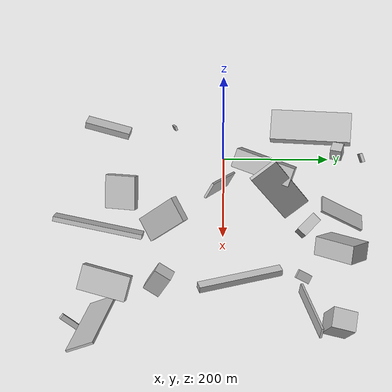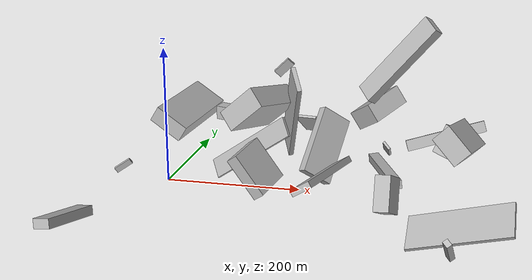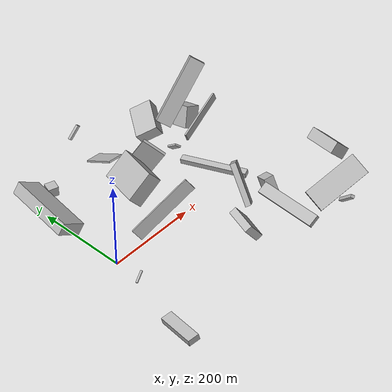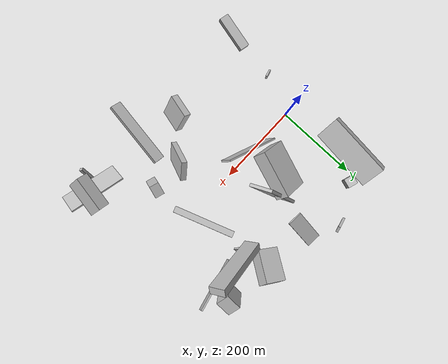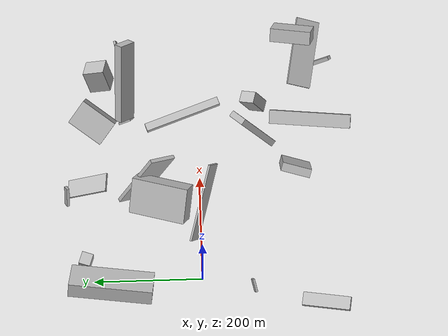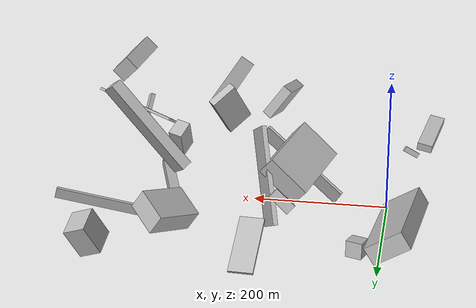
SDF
<sdf version="1.6">
 <world name="default">
  <scene>
   <sky><clouds><speed>12</speed></clouds></sky>
   <ambient>0.4 0.4 0.4 1</ambient>
   <background>0.7 0.7 0.7 1</background>
   <shadows>1</shadows>
  </scene>
  <gravity>0 0 -9.8066</gravity>
  <magnetic_field>6e-06 2.3e-05 -4.2e-05</magnetic_field>
  <physics default="0" name="default_physics" type="ode">
   <ode>
    <solver>
     <type>quick</type>
     <iters>10</iters>
     <sor>1.0</sor>
     <use_dynamic_moi_rescaling>0</use_dynamic_moi_rescaling>
    </solver>
    <constraints>
     <cfm>0</cfm>
     <erp>0.2</erp>
     <contact_max_correcting_vel>100</contact_max_correcting_vel>
     <contact_surface_layer>0.001</contact_surface_layer>
    </constraints>
   </ode>
   <max_step_size>0.004</max_step_size>
   <real_time_factor>1</real_time_factor>
   <real_time_update_rate>250</real_time_update_rate>
  </physics>
  <light name="sun" type="directional">
   <pose>0 0 10 0 0 0</pose>
   <diffuse>0.8 0.8 0.8 1</diffuse>
   <specular>0.2 0.2 0.2 1</specular>
   <attenuation>
    <range>1000</range>
    <constant>0.9</constant>
    <linear>0.01</linear>
    <quadratic>0.001</quadratic>
   </attenuation>
   <direction>-0.5 0.1 -0.9</direction>
  </light>
  <model name="building_1">
   <static>0</static>
   <pose>113.70590050160553 77.31515225843185 112.85466789901143 2.4178697901784503 0.16276785770649738 1.2487282448213217</pose>
   <link name="link">
    <gravity>0</gravity>
    <pose>0 0 16.5 0 0 0</pose>
    <collision name="collision"><geometry><box><size>105 66 33</size></box></geometry></collision>
    <visual name="visual">
     <cast_shadows>0</cast_shadows>
     <geometry><box><size>105 66 33</size></box></geometry>
     <material>
      <script>
       <uri>model://HANNAS_wall/materials/scripts</uri>
       <uri>model://HANNAS_wall/materials/textures</uri>
       <name>vrc/HANNAS_wall</name>
      </script>
     </material>
    </visual>
   </link>
  </model>
  <model name="building_2">
   <static>0</static>
   <pose>176.30418320971216 208.48847340612042 36.088987797816635 0.539823408458716 -0.015714662799701094 3.068518006890358</pose>
   <link name="link">
    <gravity>0</gravity>
    <pose>0 0 2.0 0 0 0</pose>
    <collision name="collision"><geometry><box><size>35 86 4</size></box></geometry></collision>
    <visual name="visual">
     <cast_shadows>0</cast_shadows>
     <geometry><box><size>35 86 4</size></box></geometry>
     <material>
      <script>
       <uri>model://HANNAS_wall/materials/scripts</uri>
       <uri>model://HANNAS_wall/materials/textures</uri>
       <name>vrc/HANNAS_wall</name>
      </script>
     </material>
    </visual>
   </link>
  </model>
  <model name="building_3">
   <static>0</static>
   <pose>278.12198342395806 135.5809350552114 111.88746869732276 0.5729560060322242 0.4351734814810778 0.9178163777750911</pose>
   <link name="link">
    <gravity>0</gravity>
    <pose>0 0 75.0 0 0 0</pose>
    <collision name="collision"><geometry><box><size>16 33 150</size></box></geometry></collision>
    <visual name="visual">
     <cast_shadows>0</cast_shadows>
     <geometry><box><size>16 33 150</size></box></geometry>
     <material>
      <script>
       <uri>model://HANNAS_wall/materials/scripts</uri>
       <uri>model://HANNAS_wall/materials/textures</uri>
       <name>vrc/HANNAS_wall</name>
      </script>
     </material>
    </visual>
   </link>
  </model>
  <model name="building_4">
   <static>0</static>
   <pose>249.81489508449962 -95.9874465374998 102.04854468866762 1.1442346632950966 0.5922396003157426 0.6142913740562294</pose>
   <link name="link">
    <gravity>0</gravity>
    <pose>0 0 6.0 0 0 0</pose>
    <collision name="collision"><geometry><box><size>43 90 12</size></box></geometry></collision>
    <visual name="visual">
     <cast_shadows>0</cast_shadows>
     <geometry><box><size>43 90 12</size></box></geometry>
     <material>
      <script>
       <uri>model://HANNAS_wall/materials/scripts</uri>
       <uri>model://HANNAS_wall/materials/textures</uri>
       <name>vrc/HANNAS_wall</name>
      </script>
     </material>
    </visual>
   </link>
  </model>
  <model name="building_5">
   <static>0</static>
   <pose>416.15612120923254 195.3800004437765 47.8241876266087 -2.8237240879314527 -0.3664042640521607 2.966349464511089</pose>
   <link name="link">
    <gravity>0</gravity>
    <pose>0 0 24.0 0 0 0</pose>
    <collision name="collision"><geometry><box><size>34 41 48</size></box></geometry></collision>
    <visual name="visual">
     <cast_shadows>0</cast_shadows>
     <geometry><box><size>34 41 48</size></box></geometry>
     <material>
      <script>
       <uri>model://HANNAS_wall/materials/scripts</uri>
       <uri>model://HANNAS_wall/materials/textures</uri>
       <name>vrc/HANNAS_wall</name>
      </script>
     </material>
    </visual>
   </link>
  </model>
  <model name="building_6">
   <static>0</static>
   <pose>309.59039106523915 224.96287619184528 85.67589275049984 1.8916999656250306 -0.49934786136901266 -0.7583928870047885</pose>
   <link name="link">
    <gravity>0</gravity>
    <pose>0 0 36.0 0 0 0</pose>
    <collision name="collision"><geometry><box><size>49 31 72</size></box></geometry></collision>
    <visual name="visual">
     <cast_shadows>0</cast_shadows>
     <geometry><box><size>49 31 72</size></box></geometry>
     <material>
      <script>
       <uri>model://HANNAS_wall/materials/scripts</uri>
       <uri>model://HANNAS_wall/materials/textures</uri>
       <name>vrc/HANNAS_wall</name>
      </script>
     </material>
    </visual>
   </link>
  </model>
  <model name="building_7">
   <static>0</static>
   <pose>310.31938958761464 135.28110596135417 25.968349032275377 0.8566599037642422 0.6573983559994617 1.5890601988410178</pose>
   <link name="link">
    <gravity>0</gravity>
    <pose>0 0 2.0 0 0 0</pose>
    <collision name="collision"><geometry><box><size>28 15 4</size></box></geometry></collision>
    <visual name="visual">
     <cast_shadows>0</cast_shadows>
     <geometry><box><size>28 15 4</size></box></geometry>
     <material>
      <script>
       <uri>model://HANNAS_wall/materials/scripts</uri>
       <uri>model://HANNAS_wall/materials/textures</uri>
       <name>vrc/HANNAS_wall</name>
      </script>
     </material>
    </visual>
   </link>
  </model>
  <model name="building_8">
   <static>0</static>
   <pose>341.03968001816077 -92.5894103734461 38.638655708698096 0.3523142602903828 1.1029906919324068 -1.5373922242885714</pose>
   <link name="link">
    <gravity>0</gravity>
    <pose>0 0 15.0 0 0 0</pose>
    <collision name="collision"><geometry><box><size>48 22 30</size></box></geometry></collision>
    <visual name="visual">
     <cast_shadows>0</cast_shadows>
     <geometry><box><size>48 22 30</size></box></geometry>
     <material>
      <script>
       <uri>model://HANNAS_wall/materials/scripts</uri>
       <uri>model://HANNAS_wall/materials/textures</uri>
       <name>vrc/HANNAS_wall</name>
      </script>
     </material>
    </visual>
   </link>
  </model>
  <model name="building_9">
   <static>0</static>
   <pose>-48.86035867354166 -180.7855640513294 19.790905700217454 -0.7191938143120404 -1.349444175106158 2.1042549630803187</pose>
   <link name="link">
    <gravity>0</gravity>
    <pose>0 0 43.5 0 0 0</pose>
    <collision name="collision"><geometry><box><size>13 24 87</size></box></geometry></collision>
    <visual name="visual">
     <cast_shadows>0</cast_shadows>
     <geometry><box><size>13 24 87</size></box></geometry>
     <material>
      <script>
       <uri>model://HANNAS_wall/materials/scripts</uri>
       <uri>model://HANNAS_wall/materials/textures</uri>
       <name>vrc/HANNAS_wall</name>
      </script>
     </material>
    </visual>
   </link>
  </model>
  <model name="building_10">
   <static>0</static>
   <pose>438.0410613467016 -183.6709019411958 133.22290413148107 0.20810670603024334 0.7820826267961362 3.0726432194988567</pose>
   <link name="link">
    <gravity>0</gravity>
    <pose>0 0 19.5 0 0 0</pose>
    <collision name="collision"><geometry><box><size>25 75 39</size></box></geometry></collision>
    <visual name="visual">
     <cast_shadows>0</cast_shadows>
     <geometry><box><size>25 75 39</size></box></geometry>
     <material>
      <script>
       <uri>model://HANNAS_wall/materials/scripts</uri>
       <uri>model://HANNAS_wall/materials/textures</uri>
       <name>vrc/HANNAS_wall</name>
      </script>
     </material>
    </visual>
   </link>
  </model>
  <model name="building_11">
   <static>0</static>
   <pose>123.34684441020948 241.70374282904035 124.80940794716969 1.9274603536500434 0.7339281866225056 0.46891518001641547</pose>
   <link name="link">
    <gravity>0</gravity>
    <pose>0 0 2.5 0 0 0</pose>
    <collision name="collision"><geometry><box><size>15 33 5</size></box></geometry></collision>
    <visual name="visual">
     <cast_shadows>0</cast_shadows>
     <geometry><box><size>15 33 5</size></box></geometry>
     <material>
      <script>
       <uri>model://HANNAS_wall/materials/scripts</uri>
       <uri>model://HANNAS_wall/materials/textures</uri>
       <name>vrc/HANNAS_wall</name>
      </script>
     </material>
    </visual>
   </link>
  </model>
  <model name="building_12">
   <static>0</static>
   <pose>-30.604830577280538 166.19248679044 50.003296011991296 -0.5750677298015198 0.05108668206748364 -1.6869082628381065</pose>
   <link name="link">
    <gravity>0</gravity>
    <pose>0 0 13.5 0 0 0</pose>
    <collision name="collision"><geometry><box><size>150 57 27</size></box></geometry></collision>
    <visual name="visual">
     <cast_shadows>0</cast_shadows>
     <geometry><box><size>150 57 27</size></box></geometry>
     <material>
      <script>
       <uri>model://HANNAS_wall/materials/scripts</uri>
       <uri>model://HANNAS_wall/materials/textures</uri>
       <name>vrc/HANNAS_wall</name>
      </script>
     </material>
    </visual>
   </link>
  </model>
  <model name="building_13">
   <static>0</static>
   <pose>177.01585025822183 77.89653429998174 74.73566183335419 0.03289693040260154 -1.0523889004903222 -1.1803915478923899</pose>
   <link name="link">
    <gravity>0</gravity>
    <pose>0 0 26.0 0 0 0</pose>
    <collision name="collision"><geometry><box><size>140 7 52</size></box></geometry></collision>
    <visual name="visual">
     <cast_shadows>0</cast_shadows>
     <geometry><box><size>140 7 52</size></box></geometry>
     <material>
      <script>
       <uri>model://HANNAS_wall/materials/scripts</uri>
       <uri>model://HANNAS_wall/materials/textures</uri>
       <name>vrc/HANNAS_wall</name>
      </script>
     </material>
    </visual>
   </link>
  </model>
  <model name="building_14">
   <static>0</static>
   <pose>326.5398870822768 31.999186018460545 30.346171974861477 2.585795382041411 1.4379336495062571 -0.22133078701658387</pose>
   <link name="link">
    <gravity>0</gravity>
    <pose>0 0 7.5 0 0 0</pose>
    <collision name="collision"><geometry><box><size>12 147 15</size></box></geometry></collision>
    <visual name="visual">
     <cast_shadows>0</cast_shadows>
     <geometry><box><size>12 147 15</size></box></geometry>
     <material>
      <script>
       <uri>model://HANNAS_wall/materials/scripts</uri>
       <uri>model://HANNAS_wall/materials/textures</uri>
       <name>vrc/HANNAS_wall</name>
      </script>
     </material>
    </visual>
   </link>
  </model>
  <model name="building_15">
   <static>0</static>
   <pose>423.92201921091487 -242.92270621107764 35.725573014826004 -0.9557017096385843 -0.5172737539631475 0.47545802079352006</pose>
   <link name="link">
    <gravity>0</gravity>
    <pose>0 0 4.5 0 0 0</pose>
    <collision name="collision"><geometry><box><size>7 43 9</size></box></geometry></collision>
    <visual name="visual">
     <cast_shadows>0</cast_shadows>
     <geometry><box><size>7 43 9</size></box></geometry>
     <material>
      <script>
       <uri>model://HANNAS_wall/materials/scripts</uri>
       <uri>model://HANNAS_wall/materials/textures</uri>
       <name>vrc/HANNAS_wall</name>
      </script>
     </material>
    </visual>
   </link>
  </model>
  <model name="building_16">
   <static>0</static>
   <pose>281.9790508016844 -132.4552719425708 94.14290196509538 -1.4260496246957486 0.5620662257483765 3.0635457693788</pose>
   <link name="link">
    <gravity>0</gravity>
    <pose>0 0 75.0 0 0 0</pose>
    <collision name="collision"><geometry><box><size>25 8 150</size></box></geometry></collision>
    <visual name="visual">
     <cast_shadows>0</cast_shadows>
     <geometry><box><size>25 8 150</size></box></geometry>
     <material>
      <script>
       <uri>model://HANNAS_wall/materials/scripts</uri>
       <uri>model://HANNAS_wall/materials/textures</uri>
       <name>vrc/HANNAS_wall</name>
      </script>
     </material>
    </visual>
   </link>
  </model>
  <model name="building_17">
   <static>0</static>
   <pose>187.31306854831143 -177.32662691785654 98.09510759487507 2.8789669894673984 -0.9455755710452635 3.1110918566955856</pose>
   <link name="link">
    <gravity>0</gravity>
    <pose>0 0 8.0 0 0 0</pose>
    <collision name="collision"><geometry><box><size>58 54 16</size></box></geometry></collision>
    <visual name="visual">
     <cast_shadows>0</cast_shadows>
     <geometry><box><size>58 54 16</size></box></geometry>
     <material>
      <script>
       <uri>model://HANNAS_wall/materials/scripts</uri>
       <uri>model://HANNAS_wall/materials/textures</uri>
       <name>vrc/HANNAS_wall</name>
      </script>
     </material>
    </visual>
   </link>
  </model>
  <model name="building_18">
   <static>0</static>
   <pose>38.15624583628001 207.7302008179047 48.2950196321496 1.4181799955194825 -1.5030040885986546 -1.7306508454240583</pose>
   <link name="link">
    <gravity>0</gravity>
    <pose>0 0 11.5 0 0 0</pose>
    <collision name="collision"><geometry><box><size>23 21 23</size></box></geometry></collision>
    <visual name="visual">
     <cast_shadows>0</cast_shadows>
     <geometry><box><size>23 21 23</size></box></geometry>
     <material>
      <script>
       <uri>model://HANNAS_wall/materials/scripts</uri>
       <uri>model://HANNAS_wall/materials/textures</uri>
       <name>vrc/HANNAS_wall</name>
      </script>
     </material>
    </visual>
   </link>
  </model>
  <model name="building_19">
   <static>0</static>
   <pose>400.8158438993828 143.58298997788384 51.67642423391135 1.3622506650039754 -0.26752189000139115 0.2080704350856399</pose>
   <link name="link">
    <gravity>0</gravity>
    <pose>0 0 2.0 0 0 0</pose>
    <collision name="collision"><geometry><box><size>123 17 4</size></box></geometry></collision>
    <visual name="visual">
     <cast_shadows>0</cast_shadows>
     <geometry><box><size>123 17 4</size></box></geometry>
     <material>
      <script>
       <uri>model://HANNAS_wall/materials/scripts</uri>
       <uri>model://HANNAS_wall/materials/textures</uri>
       <name>vrc/HANNAS_wall</name>
      </script>
     </material>
    </visual>
   </link>
  </model>
  <model name="building_20">
   <static>0</static>
   <pose>430.6031784322661 -206.72615824791802 54.44824102032919 2.797269830783213 -0.5006061800328208 1.5527125340008028</pose>
   <link name="link">
    <gravity>0</gravity>
    <pose>0 0 2.0 0 0 0</pose>
    <collision name="collision"><geometry><box><size>50 129 4</size></box></geometry></collision>
    <visual name="visual">
     <cast_shadows>0</cast_shadows>
     <geometry><box><size>50 129 4</size></box></geometry>
     <material>
      <script>
       <uri>model://HANNAS_wall/materials/scripts</uri>
       <uri>model://HANNAS_wall/materials/textures</uri>
       <name>vrc/HANNAS_wall</name>
      </script>
     </material>
    </visual>
   </link>
  </model>
  <model name="building_21">
   <static>0</static>
   <pose>129.49390856333562 -3.8135089001571743 59.79890116243522 1.120314712821621 0.8804191873452734 -0.8795753642597476</pose>
   <link name="link">
    <gravity>0</gravity>
    <pose>0 0 2.0 0 0 0</pose>
    <collision name="collision"><geometry><box><size>29 148 4</size></box></geometry></collision>
    <visual name="visual">
     <cast_shadows>0</cast_shadows>
     <geometry><box><size>29 148 4</size></box></geometry>
     <material>
      <script>
       <uri>model://HANNAS_wall/materials/scripts</uri>
       <uri>model://HANNAS_wall/materials/textures</uri>
       <name>vrc/HANNAS_wall</name>
      </script>
     </material>
    </visual>
   </link>
  </model>
  <model name="building_22">
   <static>0</static>
   <pose>-29.81335239448694 -93.9496376630463 51.808153219296855 -1.3677425889262531 -0.5717405617648794 0.276592522279421</pose>
   <link name="link">
    <gravity>0</gravity>
    <pose>0 0 2.0 0 0 0</pose>
    <collision name="collision"><geometry><box><size>25 8 4</size></box></geometry></collision>
    <visual name="visual">
     <cast_shadows>0</cast_shadows>
     <geometry><box><size>25 8 4</size></box></geometry>
     <material>
      <script>
       <uri>model://HANNAS_wall/materials/scripts</uri>
       <uri>model://HANNAS_wall/materials/textures</uri>
       <name>vrc/HANNAS_wall</name>
      </script>
     </material>
    </visual>
   </link>
  </model>
 </world>
</sdf>
